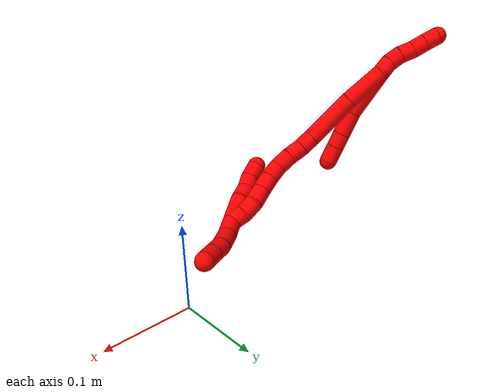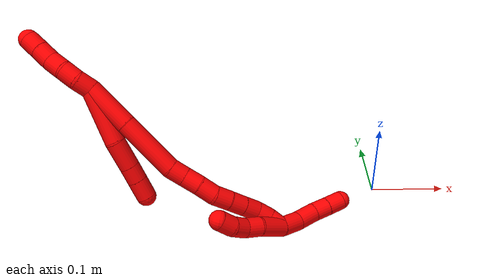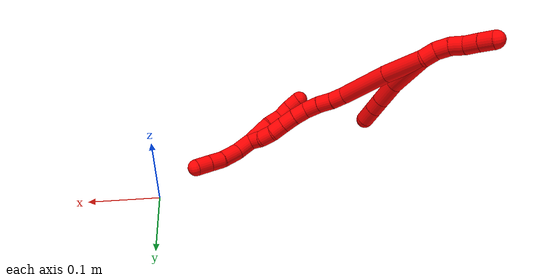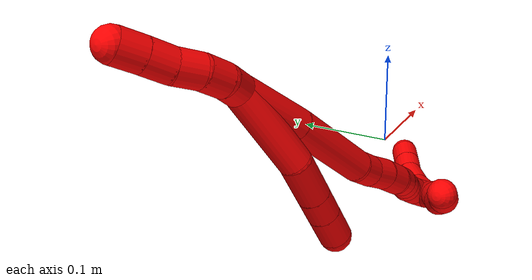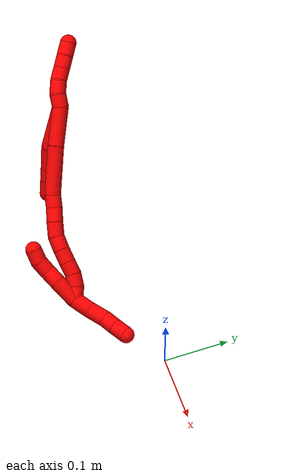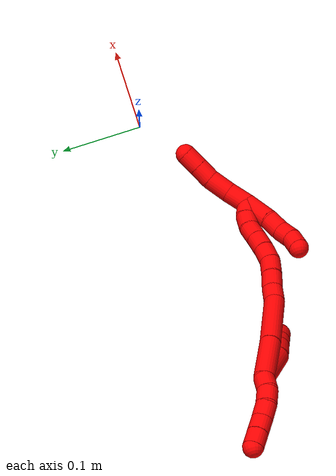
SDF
<sdf version="1.7">
 <world name="default">
  <model name="2">
   <static>0</static>
   <link name="2">
    <collision name="collision-cylinder-e_1_2_8">
     <pose>-0.008445 0.026546 -0.020393 -2.22587 -0.247109 0.493737</pose>
     <geometry><cylinder><radius>0.0125</radius><length>0.069047</length></cylinder></geometry>
     <surface>
      <friction><ode><mu>1.16</mu><mu2>1.16</mu2><slip1>0</slip1><slip2>0</slip2></ode></friction>
      <contact><ode><kp>1e+06</kp><kd>1</kd><max_vel>0</max_vel><min_depth>0.001</min_depth></ode></contact>
     </surface>
    </collision>
    <visual name="visual-cylinder-e_1_2_8">
     <pose>-0.008445 0.026546 -0.020393 -2.22587 -0.247109 0.493737</pose>
     <geometry><cylinder><radius>0.0125</radius><length>0.069047</length></cylinder></geometry>
     <material><ambient>1 0 0 1</ambient></material>
    </visual>
    <collision name="collision-cylinder-e_2_8_9">
     <pose>-0.017422 0.066833 -0.051771 -2.24513 -0.030289 0.062972</pose>
     <geometry><cylinder><radius>0.0125</radius><length>0.0352</length></cylinder></geometry>
     <surface>
      <friction><ode><mu>1.16</mu><mu2>1.16</mu2><slip1>0</slip1><slip2>0</slip2></ode></friction>
      <contact><ode><kp>1e+06</kp><kd>1</kd><max_vel>0</max_vel><min_depth>0.001</min_depth></ode></contact>
     </surface>
    </collision>
    <visual name="visual-cylinder-e_2_8_9">
     <pose>-0.017422 0.066833 -0.051771 -2.24513 -0.030289 0.062972</pose>
     <geometry><cylinder><radius>0.0125</radius><length>0.0352</length></cylinder></geometry>
     <material><ambient>1 0 0 1</ambient></material>
    </visual>
    <collision name="collision-cylinder-e_3_9_10">
     <pose>-0.018325 0.088684 -0.069087 -2.23376 -0.035925 0.073607</pose>
     <geometry><cylinder><radius>0.0125</radius><length>0.020592</length></cylinder></geometry>
     <surface>
      <friction><ode><mu>1.16</mu><mu2>1.16</mu2><slip1>0</slip1><slip2>0</slip2></ode></friction>
      <contact><ode><kp>1e+06</kp><kd>1</kd><max_vel>0</max_vel><min_depth>0.001</min_depth></ode></contact>
     </surface>
    </collision>
    <visual name="visual-cylinder-e_3_9_10">
     <pose>-0.018325 0.088684 -0.069087 -2.23376 -0.035925 0.073607</pose>
     <geometry><cylinder><radius>0.0125</radius><length>0.020592</length></cylinder></geometry>
     <material><ambient>1 0 0 1</ambient></material>
    </visual>
    <collision name="collision-cylinder-e_4_10_6">
     <pose>-0.019204 0.10672 -0.083132 -2.23129 -0.040501 0.082717</pose>
     <geometry><cylinder><radius>0.0125</radius><length>0.025161</length></cylinder></geometry>
     <surface>
      <friction><ode><mu>1.16</mu><mu2>1.16</mu2><slip1>0</slip1><slip2>0</slip2></ode></friction>
      <contact><ode><kp>1e+06</kp><kd>1</kd><max_vel>0</max_vel><min_depth>0.001</min_depth></ode></contact>
     </surface>
    </collision>
    <visual name="visual-cylinder-e_4_10_6">
     <pose>-0.019204 0.10672 -0.083132 -2.23129 -0.040501 0.082717</pose>
     <geometry><cylinder><radius>0.0125</radius><length>0.025161</length></cylinder></geometry>
     <material><ambient>1 0 0 1</ambient></material>
    </visual>
    <collision name="collision-cylinder-e_1_2_11">
     <pose>-0.000749 -0.004033 0.00912 0.416411 -0.074977 -0.015847</pose>
     <geometry><cylinder><radius>0.0125</radius><length>0.02</length></cylinder></geometry>
     <surface>
      <friction><ode><mu>1.16</mu><mu2>1.16</mu2><slip1>0</slip1><slip2>0</slip2></ode></friction>
      <contact><ode><kp>1e+06</kp><kd>1</kd><max_vel>0</max_vel><min_depth>0.001</min_depth></ode></contact>
     </surface>
    </collision>
    <visual name="visual-cylinder-e_1_2_11">
     <pose>-0.000749 -0.004033 0.00912 0.416411 -0.074977 -0.015847</pose>
     <geometry><cylinder><radius>0.0125</radius><length>0.02</length></cylinder></geometry>
     <material><ambient>1 0 0 1</ambient></material>
    </visual>
    <collision name="collision-cylinder-e_2_11_12">
     <pose>0.00068 -0.011521 0.027368 0.361761 0.219559 0.040309</pose>
     <geometry><cylinder><radius>0.0125</radius><length>0.02</length></cylinder></geometry>
     <surface>
      <friction><ode><mu>1.16</mu><mu2>1.16</mu2><slip1>0</slip1><slip2>0</slip2></ode></friction>
      <contact><ode><kp>1e+06</kp><kd>1</kd><max_vel>0</max_vel><min_depth>0.001</min_depth></ode></contact>
     </surface>
    </collision>
    <visual name="visual-cylinder-e_2_11_12">
     <pose>0.00068 -0.011521 0.027368 0.361761 0.219559 0.040309</pose>
     <geometry><cylinder><radius>0.0125</radius><length>0.02</length></cylinder></geometry>
     <material><ambient>1 0 0 1</ambient></material>
    </visual>
    <collision name="collision-cylinder-e_3_12_13">
     <pose>0.007082 -0.017145 0.045296 0.241767 0.436142 0.053824</pose>
     <geometry><cylinder><radius>0.0125</radius><length>0.02</length></cylinder></geometry>
     <surface>
      <friction><ode><mu>1.16</mu><mu2>1.16</mu2><slip1>0</slip1><slip2>0</slip2></ode></friction>
      <contact><ode><kp>1e+06</kp><kd>1</kd><max_vel>0</max_vel><min_depth>0.001</min_depth></ode></contact>
     </surface>
    </collision>
    <visual name="visual-cylinder-e_3_12_13">
     <pose>0.007082 -0.017145 0.045296 0.241767 0.436142 0.053824</pose>
     <geometry><cylinder><radius>0.0125</radius><length>0.02</length></cylinder></geometry>
     <material><ambient>1 0 0 1</ambient></material>
    </visual>
    <collision name="collision-cylinder-e_4_13_14">
     <pose>0.015192 -0.02293 0.062572 0.40311 0.399035 0.082587</pose>
     <geometry><cylinder><radius>0.0125</radius><length>0.02</length></cylinder></geometry>
     <surface>
      <friction><ode><mu>1.16</mu><mu2>1.16</mu2><slip1>0</slip1><slip2>0</slip2></ode></friction>
      <contact><ode><kp>1e+06</kp><kd>1</kd><max_vel>0</max_vel><min_depth>0.001</min_depth></ode></contact>
     </surface>
    </collision>
    <visual name="visual-cylinder-e_4_13_14">
     <pose>0.015192 -0.02293 0.062572 0.40311 0.399035 0.082587</pose>
     <geometry><cylinder><radius>0.0125</radius><length>0.02</length></cylinder></geometry>
     <material><ambient>1 0 0 1</ambient></material>
    </visual>
    <collision name="collision-cylinder-e_5_14_5">
     <pose>0.023083 -0.029874 0.079585 0.371846 0.41212 0.078594</pose>
     <geometry><cylinder><radius>0.0125</radius><length>0.02</length></cylinder></geometry>
     <surface>
      <friction><ode><mu>1.16</mu><mu2>1.16</mu2><slip1>0</slip1><slip2>0</slip2></ode></friction>
      <contact><ode><kp>1e+06</kp><kd>1</kd><max_vel>0</max_vel><min_depth>0.001</min_depth></ode></contact>
     </surface>
    </collision>
    <visual name="visual-cylinder-e_5_14_5">
     <pose>0.023083 -0.029874 0.079585 0.371846 0.41212 0.078594</pose>
     <geometry><cylinder><radius>0.0125</radius><length>0.02</length></cylinder></geometry>
     <material><ambient>1 0 0 1</ambient></material>
    </visual>
    <collision name="collision-cylinder-e_1_2_15">
     <pose>-0.006977 0.013908 -0.025037 -2.63455 -0.238956 0.86778</pose>
     <geometry><cylinder><radius>0.0125</radius><length>0.058957</length></cylinder></geometry>
     <surface>
      <friction><ode><mu>1.16</mu><mu2>1.16</mu2><slip1>0</slip1><slip2>0</slip2></ode></friction>
      <contact><ode><kp>1e+06</kp><kd>1</kd><max_vel>0</max_vel><min_depth>0.001</min_depth></ode></contact>
     </surface>
    </collision>
    <visual name="visual-cylinder-e_1_2_15">
     <pose>-0.006977 0.013908 -0.025037 -2.63455 -0.238956 0.86778</pose>
     <geometry><cylinder><radius>0.0125</radius><length>0.058957</length></cylinder></geometry>
     <material><ambient>1 0 0 1</ambient></material>
    </visual>
    <collision name="collision-cylinder-e_2_15_16">
     <pose>-0.020414 0.046951 -0.081747 -2.59813 -0.172817 0.602851</pose>
     <geometry><cylinder><radius>0.0125</radius><length>0.075126</length></cylinder></geometry>
     <surface>
      <friction><ode><mu>1.16</mu><mu2>1.16</mu2><slip1>0</slip1><slip2>0</slip2></ode></friction>
      <contact><ode><kp>1e+06</kp><kd>1</kd><max_vel>0</max_vel><min_depth>0.001</min_depth></ode></contact>
     </surface>
    </collision>
    <visual name="visual-cylinder-e_2_15_16">
     <pose>-0.020414 0.046951 -0.081747 -2.59813 -0.172817 0.602851</pose>
     <geometry><cylinder><radius>0.0125</radius><length>0.075126</length></cylinder></geometry>
     <material><ambient>1 0 0 1</ambient></material>
    </visual>
    <collision name="collision-cylinder-e_3_16_17">
     <pose>-0.027177 0.069457 -0.122867 -2.79886 -0.030305 0.174679</pose>
     <geometry><cylinder><radius>0.0125</radius><length>0.020073</length></cylinder></geometry>
     <surface>
      <friction><ode><mu>1.16</mu><mu2>1.16</mu2><slip1>0</slip1><slip2>0</slip2></ode></friction>
      <contact><ode><kp>1e+06</kp><kd>1</kd><max_vel>0</max_vel><min_depth>0.001</min_depth></ode></contact>
     </surface>
    </collision>
    <visual name="visual-cylinder-e_3_16_17">
     <pose>-0.027177 0.069457 -0.122867 -2.79886 -0.030305 0.174679</pose>
     <geometry><cylinder><radius>0.0125</radius><length>0.020073</length></cylinder></geometry>
     <material><ambient>1 0 0 1</ambient></material>
    </visual>
    <collision name="collision-cylinder-e_4_17_18">
     <pose>-0.028915 0.075698 -0.142444 -2.8655 -0.135403 0.908072</pose>
     <geometry><cylinder><radius>0.0125</radius><length>0.02125</length></cylinder></geometry>
     <surface>
      <friction><ode><mu>1.16</mu><mu2>1.16</mu2><slip1>0</slip1><slip2>0</slip2></ode></friction>
      <contact><ode><kp>1e+06</kp><kd>1</kd><max_vel>0</max_vel><min_depth>0.001</min_depth></ode></contact>
     </surface>
    </collision>
    <visual name="visual-cylinder-e_4_17_18">
     <pose>-0.028915 0.075698 -0.142444 -2.8655 -0.135403 0.908072</pose>
     <geometry><cylinder><radius>0.0125</radius><length>0.02125</length></cylinder></geometry>
     <material><ambient>1 0 0 1</ambient></material>
    </visual>
    <collision name="collision-cylinder-e_5_18_19">
     <pose>-0.031051 0.082524 -0.162939 -2.77698 -0.063101 0.339103</pose>
     <geometry><cylinder><radius>0.0125</radius><length>0.022234</length></cylinder></geometry>
     <surface>
      <friction><ode><mu>1.16</mu><mu2>1.16</mu2><slip1>0</slip1><slip2>0</slip2></ode></friction>
      <contact><ode><kp>1e+06</kp><kd>1</kd><max_vel>0</max_vel><min_depth>0.001</min_depth></ode></contact>
     </surface>
    </collision>
    <visual name="visual-cylinder-e_5_18_19">
     <pose>-0.031051 0.082524 -0.162939 -2.77698 -0.063101 0.339103</pose>
     <geometry><cylinder><radius>0.0125</radius><length>0.022234</length></cylinder></geometry>
     <material><ambient>1 0 0 1</ambient></material>
    </visual>
    <collision name="collision-cylinder-e_6_19_20">
     <pose>-0.029514 0.089221 -0.183145 -2.86995 0.215633 -1.33968</pose>
     <geometry><cylinder><radius>0.0125</radius><length>0.020914</length></cylinder></geometry>
     <surface>
      <friction><ode><mu>1.16</mu><mu2>1.16</mu2><slip1>0</slip1><slip2>0</slip2></ode></friction>
      <contact><ode><kp>1e+06</kp><kd>1</kd><max_vel>0</max_vel><min_depth>0.001</min_depth></ode></contact>
     </surface>
    </collision>
    <visual name="visual-cylinder-e_6_19_20">
     <pose>-0.029514 0.089221 -0.183145 -2.86995 0.215633 -1.33968</pose>
     <geometry><cylinder><radius>0.0125</radius><length>0.020914</length></cylinder></geometry>
     <material><ambient>1 0 0 1</ambient></material>
    </visual>
    <collision name="collision-cylinder-e_7_20_21">
     <pose>-0.024388 0.095142 -0.202438 -2.81708 0.281983 -1.42862</pose>
     <geometry><cylinder><radius>0.0125</radius><length>0.020767</length></cylinder></geometry>
     <surface>
      <friction><ode><mu>1.16</mu><mu2>1.16</mu2><slip1>0</slip1><slip2>0</slip2></ode></friction>
      <contact><ode><kp>1e+06</kp><kd>1</kd><max_vel>0</max_vel><min_depth>0.001</min_depth></ode></contact>
     </surface>
    </collision>
    <visual name="visual-cylinder-e_7_20_21">
     <pose>-0.024388 0.095142 -0.202438 -2.81708 0.281983 -1.42862</pose>
     <geometry><cylinder><radius>0.0125</radius><length>0.020767</length></cylinder></geometry>
     <material><ambient>1 0 0 1</ambient></material>
    </visual>
    <collision name="collision-cylinder-e_8_21_22">
     <pose>-0.018333 0.101546 -0.221161 -2.80693 0.31193 -1.49927</pose>
     <geometry><cylinder><radius>0.0125</radius><length>0.020625</length></cylinder></geometry>
     <surface>
      <friction><ode><mu>1.16</mu><mu2>1.16</mu2><slip1>0</slip1><slip2>0</slip2></ode></friction>
      <contact><ode><kp>1e+06</kp><kd>1</kd><max_vel>0</max_vel><min_depth>0.001</min_depth></ode></contact>
     </surface>
    </collision>
    <visual name="visual-cylinder-e_8_21_22">
     <pose>-0.018333 0.101546 -0.221161 -2.80693 0.31193 -1.49927</pose>
     <geometry><cylinder><radius>0.0125</radius><length>0.020625</length></cylinder></geometry>
     <material><ambient>1 0 0 1</ambient></material>
    </visual>
    <collision name="collision-cylinder-e_9_22_23">
     <pose>-0.014491 0.108105 -0.239835 -2.8007 0.067792 -0.389037</pose>
     <geometry><cylinder><radius>0.0125</radius><length>0.02</length></cylinder></geometry>
     <surface>
      <friction><ode><mu>1.16</mu><mu2>1.16</mu2><slip1>0</slip1><slip2>0</slip2></ode></friction>
      <contact><ode><kp>1e+06</kp><kd>1</kd><max_vel>0</max_vel><min_depth>0.001</min_depth></ode></contact>
     </surface>
    </collision>
    <visual name="visual-cylinder-e_9_22_23">
     <pose>-0.014491 0.108105 -0.239835 -2.8007 0.067792 -0.389037</pose>
     <geometry><cylinder><radius>0.0125</radius><length>0.02</length></cylinder></geometry>
     <material><ambient>1 0 0 1</ambient></material>
    </visual>
    <collision name="collision-cylinder-e_10_23_1">
     <pose>-0.016298 0.114791 -0.258356 -2.78948 -0.250351 1.23127</pose>
     <geometry><cylinder><radius>0.0125</radius><length>0.020054</length></cylinder></geometry>
     <surface>
      <friction><ode><mu>1.16</mu><mu2>1.16</mu2><slip1>0</slip1><slip2>0</slip2></ode></friction>
      <contact><ode><kp>1e+06</kp><kd>1</kd><max_vel>0</max_vel><min_depth>0.001</min_depth></ode></contact>
     </surface>
    </collision>
    <visual name="visual-cylinder-e_10_23_1">
     <pose>-0.016298 0.114791 -0.258356 -2.78948 -0.250351 1.23127</pose>
     <geometry><cylinder><radius>0.0125</radius><length>0.020054</length></cylinder></geometry>
     <material><ambient>1 0 0 1</ambient></material>
    </visual>
    <collision name="collision-cylinder-e_1_1_24">
     <pose>-0.029576 0.114656 -0.252256 0.225139 -0.604916 -0.070519</pose>
     <geometry><cylinder><radius>0.0125</radius><length>0.03796</length></cylinder></geometry>
     <surface>
      <friction><ode><mu>1.16</mu><mu2>1.16</mu2><slip1>0</slip1><slip2>0</slip2></ode></friction>
      <contact><ode><kp>1e+06</kp><kd>1</kd><max_vel>0</max_vel><min_depth>0.001</min_depth></ode></contact>
     </surface>
    </collision>
    <visual name="visual-cylinder-e_1_1_24">
     <pose>-0.029576 0.114656 -0.252256 0.225139 -0.604916 -0.070519</pose>
     <geometry><cylinder><radius>0.0125</radius><length>0.03796</length></cylinder></geometry>
     <material><ambient>1 0 0 1</ambient></material>
    </visual>
    <collision name="collision-cylinder-e_2_24_25">
     <pose>-0.045787 0.111232 -0.227672 -0.006516 -0.524398 0.001749</pose>
     <geometry><cylinder><radius>0.0125</radius><length>0.02164</length></cylinder></geometry>
     <surface>
      <friction><ode><mu>1.16</mu><mu2>1.16</mu2><slip1>0</slip1><slip2>0</slip2></ode></friction>
      <contact><ode><kp>1e+06</kp><kd>1</kd><max_vel>0</max_vel><min_depth>0.001</min_depth></ode></contact>
     </surface>
    </collision>
    <visual name="visual-cylinder-e_2_24_25">
     <pose>-0.045787 0.111232 -0.227672 -0.006516 -0.524398 0.001749</pose>
     <geometry><cylinder><radius>0.0125</radius><length>0.02164</length></cylinder></geometry>
     <material><ambient>1 0 0 1</ambient></material>
    </visual>
    <collision name="collision-cylinder-e_3_25_26">
     <pose>-0.05678 0.108515 -0.210366 0.336565 -0.585306 -0.102287</pose>
     <geometry><cylinder><radius>0.0125</radius><length>0.020185</length></cylinder></geometry>
     <surface>
      <friction><ode><mu>1.16</mu><mu2>1.16</mu2><slip1>0</slip1><slip2>0</slip2></ode></friction>
      <contact><ode><kp>1e+06</kp><kd>1</kd><max_vel>0</max_vel><min_depth>0.001</min_depth></ode></contact>
     </surface>
    </collision>
    <visual name="visual-cylinder-e_3_25_26">
     <pose>-0.05678 0.108515 -0.210366 0.336565 -0.585306 -0.102287</pose>
     <geometry><cylinder><radius>0.0125</radius><length>0.020185</length></cylinder></geometry>
     <material><ambient>1 0 0 1</ambient></material>
    </visual>
    <collision name="collision-cylinder-e_4_26_4">
     <pose>-0.06525 0.10172 -0.193613 0.427624 -0.290428 -0.063487</pose>
     <geometry><cylinder><radius>0.0125</radius><length>0.020215</length></cylinder></geometry>
     <surface>
      <friction><ode><mu>1.16</mu><mu2>1.16</mu2><slip1>0</slip1><slip2>0</slip2></ode></friction>
      <contact><ode><kp>1e+06</kp><kd>1</kd><max_vel>0</max_vel><min_depth>0.001</min_depth></ode></contact>
     </surface>
    </collision>
    <visual name="visual-cylinder-e_4_26_4">
     <pose>-0.06525 0.10172 -0.193613 0.427624 -0.290428 -0.063487</pose>
     <geometry><cylinder><radius>0.0125</radius><length>0.020215</length></cylinder></geometry>
     <material><ambient>1 0 0 1</ambient></material>
    </visual>
    <collision name="collision-cylinder-e_1_1_27">
     <pose>-0.009431 0.116831 -0.277995 3.01771 0.722787 2.81634</pose>
     <geometry><cylinder><radius>0.0125</radius><length>0.028273</length></cylinder></geometry>
     <surface>
      <friction><ode><mu>1.16</mu><mu2>1.16</mu2><slip1>0</slip1><slip2>0</slip2></ode></friction>
      <contact><ode><kp>1e+06</kp><kd>1</kd><max_vel>0</max_vel><min_depth>0.001</min_depth></ode></contact>
     </surface>
    </collision>
    <visual name="visual-cylinder-e_1_1_27">
     <pose>-0.009431 0.116831 -0.277995 3.01771 0.722787 2.81634</pose>
     <geometry><cylinder><radius>0.0125</radius><length>0.028273</length></cylinder></geometry>
     <material><ambient>1 0 0 1</ambient></material>
    </visual>
    <collision name="collision-cylinder-e_2_27_28">
     <pose>0.008801 0.111461 -0.298793 2.76533 0.676999 2.15011</pose>
     <geometry><cylinder><radius>0.0125</radius><length>0.028354</length></cylinder></geometry>
     <surface>
      <friction><ode><mu>1.16</mu><mu2>1.16</mu2><slip1>0</slip1><slip2>0</slip2></ode></friction>
      <contact><ode><kp>1e+06</kp><kd>1</kd><max_vel>0</max_vel><min_depth>0.001</min_depth></ode></contact>
     </surface>
    </collision>
    <visual name="visual-cylinder-e_2_27_28">
     <pose>0.008801 0.111461 -0.298793 2.76533 0.676999 2.15011</pose>
     <geometry><cylinder><radius>0.0125</radius><length>0.028354</length></cylinder></geometry>
     <material><ambient>1 0 0 1</ambient></material>
    </visual>
    <collision name="collision-cylinder-e_3_28_29">
     <pose>0.022662 0.103549 -0.31763 2.71878 0.487733 1.71814</pose>
     <geometry><cylinder><radius>0.0125</radius><length>0.02125</length></cylinder></geometry>
     <surface>
      <friction><ode><mu>1.16</mu><mu2>1.16</mu2><slip1>0</slip1><slip2>0</slip2></ode></friction>
      <contact><ode><kp>1e+06</kp><kd>1</kd><max_vel>0</max_vel><min_depth>0.001</min_depth></ode></contact>
     </surface>
    </collision>
    <visual name="visual-cylinder-e_3_28_29">
     <pose>0.022662 0.103549 -0.31763 2.71878 0.487733 1.71814</pose>
     <geometry><cylinder><radius>0.0125</radius><length>0.02125</length></cylinder></geometry>
     <material><ambient>1 0 0 1</ambient></material>
    </visual>
    <collision name="collision-cylinder-e_4_29_3">
     <pose>0.033047 0.09563 -0.334941 2.70655 0.51061 1.73631</pose>
     <geometry><cylinder><radius>0.0125</radius><length>0.022123</length></cylinder></geometry>
     <surface>
      <friction><ode><mu>1.16</mu><mu2>1.16</mu2><slip1>0</slip1><slip2>0</slip2></ode></friction>
      <contact><ode><kp>1e+06</kp><kd>1</kd><max_vel>0</max_vel><min_depth>0.001</min_depth></ode></contact>
     </surface>
    </collision>
    <visual name="visual-cylinder-e_4_29_3">
     <pose>0.033047 0.09563 -0.334941 2.70655 0.51061 1.73631</pose>
     <geometry><cylinder><radius>0.0125</radius><length>0.022123</length></cylinder></geometry>
     <material><ambient>1 0 0 1</ambient></material>
    </visual>
    <collision name="collision-sphere-3">
     <pose>0.038453 0.091563 -0.343693 0 -0 0</pose>
     <geometry><sphere><radius>0.0125</radius></sphere></geometry>
     <surface>
      <friction><ode><mu>1.16</mu><mu2>1.16</mu2><slip1>0</slip1><slip2>0</slip2></ode></friction>
      <contact><ode><kp>1e+06</kp><kd>1</kd><max_vel>0</max_vel><min_depth>0.001</min_depth></ode></contact>
     </surface>
    </collision>
    <visual name="visual-sphere-3">
     <pose>0.038453 0.091563 -0.343693 0 -0 0</pose>
     <geometry><sphere><radius>0.0125</radius></sphere></geometry>
     <material><ambient>1 0 0 1</ambient></material>
    </visual>
    <collision name="collision-sphere-29">
     <pose>0.027641 0.099698 -0.326189 0 -0 0</pose>
     <geometry><sphere><radius>0.0125</radius></sphere></geometry>
     <surface>
      <friction><ode><mu>1.16</mu><mu2>1.16</mu2><slip1>0</slip1><slip2>0</slip2></ode></friction>
      <contact><ode><kp>1e+06</kp><kd>1</kd><max_vel>0</max_vel><min_depth>0.001</min_depth></ode></contact>
     </surface>
    </collision>
    <visual name="visual-sphere-29">
     <pose>0.027641 0.099698 -0.326189 0 -0 0</pose>
     <geometry><sphere><radius>0.0125</radius></sphere></geometry>
     <material><ambient>1 0 0 1</ambient></material>
    </visual>
    <collision name="collision-sphere-28">
     <pose>0.017683 0.107401 -0.30907 0 -0 0</pose>
     <geometry><sphere><radius>0.0125</radius></sphere></geometry>
     <surface>
      <friction><ode><mu>1.16</mu><mu2>1.16</mu2><slip1>0</slip1><slip2>0</slip2></ode></friction>
      <contact><ode><kp>1e+06</kp><kd>1</kd><max_vel>0</max_vel><min_depth>0.001</min_depth></ode></contact>
     </surface>
    </collision>
    <visual name="visual-sphere-28">
     <pose>0.017683 0.107401 -0.30907 0 -0 0</pose>
     <geometry><sphere><radius>0.0125</radius></sphere></geometry>
     <material><ambient>1 0 0 1</ambient></material>
    </visual>
    <collision name="collision-sphere-27">
     <pose>-8e-05 0.115521 -0.288516 0 -0 0</pose>
     <geometry><sphere><radius>0.0125</radius></sphere></geometry>
     <surface>
      <friction><ode><mu>1.16</mu><mu2>1.16</mu2><slip1>0</slip1><slip2>0</slip2></ode></friction>
      <contact><ode><kp>1e+06</kp><kd>1</kd><max_vel>0</max_vel><min_depth>0.001</min_depth></ode></contact>
     </surface>
    </collision>
    <visual name="visual-sphere-27">
     <pose>-8e-05 0.115521 -0.288516 0 -0 0</pose>
     <geometry><sphere><radius>0.0125</radius></sphere></geometry>
     <material><ambient>1 0 0 1</ambient></material>
    </visual>
    <collision name="collision-sphere-4">
     <pose>-0.068144 0.097704 -0.184801 0 -0 0</pose>
     <geometry><sphere><radius>0.0125</radius></sphere></geometry>
     <surface>
      <friction><ode><mu>1.16</mu><mu2>1.16</mu2><slip1>0</slip1><slip2>0</slip2></ode></friction>
      <contact><ode><kp>1e+06</kp><kd>1</kd><max_vel>0</max_vel><min_depth>0.001</min_depth></ode></contact>
     </surface>
    </collision>
    <visual name="visual-sphere-4">
     <pose>-0.068144 0.097704 -0.184801 0 -0 0</pose>
     <geometry><sphere><radius>0.0125</radius></sphere></geometry>
     <material><ambient>1 0 0 1</ambient></material>
    </visual>
    <collision name="collision-sphere-26">
     <pose>-0.062356 0.105737 -0.202426 0 -0 0</pose>
     <geometry><sphere><radius>0.0125</radius></sphere></geometry>
     <surface>
      <friction><ode><mu>1.16</mu><mu2>1.16</mu2><slip1>0</slip1><slip2>0</slip2></ode></friction>
      <contact><ode><kp>1e+06</kp><kd>1</kd><max_vel>0</max_vel><min_depth>0.001</min_depth></ode></contact>
     </surface>
    </collision>
    <visual name="visual-sphere-26">
     <pose>-0.062356 0.105737 -0.202426 0 -0 0</pose>
     <geometry><sphere><radius>0.0125</radius></sphere></geometry>
     <material><ambient>1 0 0 1</ambient></material>
    </visual>
    <collision name="collision-sphere-25">
     <pose>-0.051205 0.111293 -0.218306 0 -0 0</pose>
     <geometry><sphere><radius>0.0125</radius></sphere></geometry>
     <surface>
      <friction><ode><mu>1.16</mu><mu2>1.16</mu2><slip1>0</slip1><slip2>0</slip2></ode></friction>
      <contact><ode><kp>1e+06</kp><kd>1</kd><max_vel>0</max_vel><min_depth>0.001</min_depth></ode></contact>
     </surface>
    </collision>
    <visual name="visual-sphere-25">
     <pose>-0.051205 0.111293 -0.218306 0 -0 0</pose>
     <geometry><sphere><radius>0.0125</radius></sphere></geometry>
     <material><ambient>1 0 0 1</ambient></material>
    </visual>
    <collision name="collision-sphere-24">
     <pose>-0.04037 0.111171 -0.237038 0 -0 0</pose>
     <geometry><sphere><radius>0.0125</radius></sphere></geometry>
     <surface>
      <friction><ode><mu>1.16</mu><mu2>1.16</mu2><slip1>0</slip1><slip2>0</slip2></ode></friction>
      <contact><ode><kp>1e+06</kp><kd>1</kd><max_vel>0</max_vel><min_depth>0.001</min_depth></ode></contact>
     </surface>
    </collision>
    <visual name="visual-sphere-24">
     <pose>-0.04037 0.111171 -0.237038 0 -0 0</pose>
     <geometry><sphere><radius>0.0125</radius></sphere></geometry>
     <material><ambient>1 0 0 1</ambient></material>
    </visual>
    <collision name="collision-sphere-1">
     <pose>-0.018782 0.118141 -0.267474 0 -0 0</pose>
     <geometry><sphere><radius>0.0125</radius></sphere></geometry>
     <surface>
      <friction><ode><mu>1.16</mu><mu2>1.16</mu2><slip1>0</slip1><slip2>0</slip2></ode></friction>
      <contact><ode><kp>1e+06</kp><kd>1</kd><max_vel>0</max_vel><min_depth>0.001</min_depth></ode></contact>
     </surface>
    </collision>
    <visual name="visual-sphere-1">
     <pose>-0.018782 0.118141 -0.267474 0 -0 0</pose>
     <geometry><sphere><radius>0.0125</radius></sphere></geometry>
     <material><ambient>1 0 0 1</ambient></material>
    </visual>
    <collision name="collision-sphere-23">
     <pose>-0.013814 0.111441 -0.249238 0 -0 0</pose>
     <geometry><sphere><radius>0.0125</radius></sphere></geometry>
     <surface>
      <friction><ode><mu>1.16</mu><mu2>1.16</mu2><slip1>0</slip1><slip2>0</slip2></ode></friction>
      <contact><ode><kp>1e+06</kp><kd>1</kd><max_vel>0</max_vel><min_depth>0.001</min_depth></ode></contact>
     </surface>
    </collision>
    <visual name="visual-sphere-23">
     <pose>-0.013814 0.111441 -0.249238 0 -0 0</pose>
     <geometry><sphere><radius>0.0125</radius></sphere></geometry>
     <material><ambient>1 0 0 1</ambient></material>
    </visual>
    <collision name="collision-sphere-22">
     <pose>-0.015168 0.10477 -0.230432 0 -0 0</pose>
     <geometry><sphere><radius>0.0125</radius></sphere></geometry>
     <surface>
      <friction><ode><mu>1.16</mu><mu2>1.16</mu2><slip1>0</slip1><slip2>0</slip2></ode></friction>
      <contact><ode><kp>1e+06</kp><kd>1</kd><max_vel>0</max_vel><min_depth>0.001</min_depth></ode></contact>
     </surface>
    </collision>
    <visual name="visual-sphere-22">
     <pose>-0.015168 0.10477 -0.230432 0 -0 0</pose>
     <geometry><sphere><radius>0.0125</radius></sphere></geometry>
     <material><ambient>1 0 0 1</ambient></material>
    </visual>
    <collision name="collision-sphere-21">
     <pose>-0.021498 0.098322 -0.211891 0 -0 0</pose>
     <geometry><sphere><radius>0.0125</radius></sphere></geometry>
     <surface>
      <friction><ode><mu>1.16</mu><mu2>1.16</mu2><slip1>0</slip1><slip2>0</slip2></ode></friction>
      <contact><ode><kp>1e+06</kp><kd>1</kd><max_vel>0</max_vel><min_depth>0.001</min_depth></ode></contact>
     </surface>
    </collision>
    <visual name="visual-sphere-21">
     <pose>-0.021498 0.098322 -0.211891 0 -0 0</pose>
     <geometry><sphere><radius>0.0125</radius></sphere></geometry>
     <material><ambient>1 0 0 1</ambient></material>
    </visual>
    <collision name="collision-sphere-11">
     <pose>-0.001498 -0.008067 0.01824 0 -0 0</pose>
     <geometry><sphere><radius>0.0125</radius></sphere></geometry>
     <surface>
      <friction><ode><mu>1.16</mu><mu2>1.16</mu2><slip1>0</slip1><slip2>0</slip2></ode></friction>
      <contact><ode><kp>1e+06</kp><kd>1</kd><max_vel>0</max_vel><min_depth>0.001</min_depth></ode></contact>
     </surface>
    </collision>
    <visual name="visual-sphere-11">
     <pose>-0.001498 -0.008067 0.01824 0 -0 0</pose>
     <geometry><sphere><radius>0.0125</radius></sphere></geometry>
     <material><ambient>1 0 0 1</ambient></material>
    </visual>
    <collision name="collision-sphere-6">
     <pose>-0.019714 0.116647 -0.090844 0 -0 0</pose>
     <geometry><sphere><radius>0.0125</radius></sphere></geometry>
     <surface>
      <friction><ode><mu>1.16</mu><mu2>1.16</mu2><slip1>0</slip1><slip2>0</slip2></ode></friction>
      <contact><ode><kp>1e+06</kp><kd>1</kd><max_vel>0</max_vel><min_depth>0.001</min_depth></ode></contact>
     </surface>
    </collision>
    <visual name="visual-sphere-6">
     <pose>-0.019714 0.116647 -0.090844 0 -0 0</pose>
     <geometry><sphere><radius>0.0125</radius></sphere></geometry>
     <material><ambient>1 0 0 1</ambient></material>
    </visual>
    <collision name="collision-sphere-10">
     <pose>-0.018695 0.096793 -0.07542 0 -0 0</pose>
     <geometry><sphere><radius>0.0125</radius></sphere></geometry>
     <surface>
      <friction><ode><mu>1.16</mu><mu2>1.16</mu2><slip1>0</slip1><slip2>0</slip2></ode></friction>
      <contact><ode><kp>1e+06</kp><kd>1</kd><max_vel>0</max_vel><min_depth>0.001</min_depth></ode></contact>
     </surface>
    </collision>
    <visual name="visual-sphere-10">
     <pose>-0.018695 0.096793 -0.07542 0 -0 0</pose>
     <geometry><sphere><radius>0.0125</radius></sphere></geometry>
     <material><ambient>1 0 0 1</ambient></material>
    </visual>
    <collision name="collision-sphere-9">
     <pose>-0.017955 0.080574 -0.062755 0 -0 0</pose>
     <geometry><sphere><radius>0.0125</radius></sphere></geometry>
     <surface>
      <friction><ode><mu>1.16</mu><mu2>1.16</mu2><slip1>0</slip1><slip2>0</slip2></ode></friction>
      <contact><ode><kp>1e+06</kp><kd>1</kd><max_vel>0</max_vel><min_depth>0.001</min_depth></ode></contact>
     </surface>
    </collision>
    <visual name="visual-sphere-9">
     <pose>-0.017955 0.080574 -0.062755 0 -0 0</pose>
     <geometry><sphere><radius>0.0125</radius></sphere></geometry>
     <material><ambient>1 0 0 1</ambient></material>
    </visual>
    <collision name="collision-sphere-2">
     <geometry><sphere><radius>0.0125</radius></sphere></geometry>
     <surface>
      <friction><ode><mu>1.16</mu><mu2>1.16</mu2><slip1>0</slip1><slip2>0</slip2></ode></friction>
      <contact><ode><kp>1e+06</kp><kd>1</kd><max_vel>0</max_vel><min_depth>0.001</min_depth></ode></contact>
     </surface>
    </collision>
    <visual name="visual-sphere-2">
     <geometry><sphere><radius>0.0125</radius></sphere></geometry>
     <material><ambient>1 0 0 1</ambient></material>
    </visual>
    <collision name="collision-sphere-19">
     <pose>-0.031752 0.08648 -0.173305 0 -0 0</pose>
     <geometry><sphere><radius>0.0125</radius></sphere></geometry>
     <surface>
      <friction><ode><mu>1.16</mu><mu2>1.16</mu2><slip1>0</slip1><slip2>0</slip2></ode></friction>
      <contact><ode><kp>1e+06</kp><kd>1</kd><max_vel>0</max_vel><min_depth>0.001</min_depth></ode></contact>
     </surface>
    </collision>
    <visual name="visual-sphere-19">
     <pose>-0.031752 0.08648 -0.173305 0 -0 0</pose>
     <geometry><sphere><radius>0.0125</radius></sphere></geometry>
     <material><ambient>1 0 0 1</ambient></material>
    </visual>
    <collision name="collision-sphere-8">
     <pose>-0.016889 0.053092 -0.040787 0 -0 0</pose>
     <geometry><sphere><radius>0.0125</radius></sphere></geometry>
     <surface>
      <friction><ode><mu>1.16</mu><mu2>1.16</mu2><slip1>0</slip1><slip2>0</slip2></ode></friction>
      <contact><ode><kp>1e+06</kp><kd>1</kd><max_vel>0</max_vel><min_depth>0.001</min_depth></ode></contact>
     </surface>
    </collision>
    <visual name="visual-sphere-8">
     <pose>-0.016889 0.053092 -0.040787 0 -0 0</pose>
     <geometry><sphere><radius>0.0125</radius></sphere></geometry>
     <material><ambient>1 0 0 1</ambient></material>
    </visual>
    <collision name="collision-sphere-12">
     <pose>0.002858 -0.014975 0.036496 0 -0 0</pose>
     <geometry><sphere><radius>0.0125</radius></sphere></geometry>
     <surface>
      <friction><ode><mu>1.16</mu><mu2>1.16</mu2><slip1>0</slip1><slip2>0</slip2></ode></friction>
      <contact><ode><kp>1e+06</kp><kd>1</kd><max_vel>0</max_vel><min_depth>0.001</min_depth></ode></contact>
     </surface>
    </collision>
    <visual name="visual-sphere-12">
     <pose>0.002858 -0.014975 0.036496 0 -0 0</pose>
     <geometry><sphere><radius>0.0125</radius></sphere></geometry>
     <material><ambient>1 0 0 1</ambient></material>
    </visual>
    <collision name="collision-sphere-13">
     <pose>0.011307 -0.019316 0.054097 0 -0 0</pose>
     <geometry><sphere><radius>0.0125</radius></sphere></geometry>
     <surface>
      <friction><ode><mu>1.16</mu><mu2>1.16</mu2><slip1>0</slip1><slip2>0</slip2></ode></friction>
      <contact><ode><kp>1e+06</kp><kd>1</kd><max_vel>0</max_vel><min_depth>0.001</min_depth></ode></contact>
     </surface>
    </collision>
    <visual name="visual-sphere-13">
     <pose>0.011307 -0.019316 0.054097 0 -0 0</pose>
     <geometry><sphere><radius>0.0125</radius></sphere></geometry>
     <material><ambient>1 0 0 1</ambient></material>
    </visual>
    <collision name="collision-sphere-14">
     <pose>0.019077 -0.026545 0.071048 0 -0 0</pose>
     <geometry><sphere><radius>0.0125</radius></sphere></geometry>
     <surface>
      <friction><ode><mu>1.16</mu><mu2>1.16</mu2><slip1>0</slip1><slip2>0</slip2></ode></friction>
      <contact><ode><kp>1e+06</kp><kd>1</kd><max_vel>0</max_vel><min_depth>0.001</min_depth></ode></contact>
     </surface>
    </collision>
    <visual name="visual-sphere-14">
     <pose>0.019077 -0.026545 0.071048 0 -0 0</pose>
     <geometry><sphere><radius>0.0125</radius></sphere></geometry>
     <material><ambient>1 0 0 1</ambient></material>
    </visual>
    <collision name="collision-sphere-5">
     <pose>0.027088 -0.033203 0.088121 0 -0 0</pose>
     <geometry><sphere><radius>0.0125</radius></sphere></geometry>
     <surface>
      <friction><ode><mu>1.16</mu><mu2>1.16</mu2><slip1>0</slip1><slip2>0</slip2></ode></friction>
      <contact><ode><kp>1e+06</kp><kd>1</kd><max_vel>0</max_vel><min_depth>0.001</min_depth></ode></contact>
     </surface>
    </collision>
    <visual name="visual-sphere-5">
     <pose>0.027088 -0.033203 0.088121 0 -0 0</pose>
     <geometry><sphere><radius>0.0125</radius></sphere></geometry>
     <material><ambient>1 0 0 1</ambient></material>
    </visual>
    <collision name="collision-sphere-15">
     <pose>-0.013954 0.027816 -0.050075 0 -0 0</pose>
     <geometry><sphere><radius>0.0125</radius></sphere></geometry>
     <surface>
      <friction><ode><mu>1.16</mu><mu2>1.16</mu2><slip1>0</slip1><slip2>0</slip2></ode></friction>
      <contact><ode><kp>1e+06</kp><kd>1</kd><max_vel>0</max_vel><min_depth>0.001</min_depth></ode></contact>
     </surface>
    </collision>
    <visual name="visual-sphere-15">
     <pose>-0.013954 0.027816 -0.050075 0 -0 0</pose>
     <geometry><sphere><radius>0.0125</radius></sphere></geometry>
     <material><ambient>1 0 0 1</ambient></material>
    </visual>
    <collision name="collision-sphere-16">
     <pose>-0.026873 0.066085 -0.113419 0 -0 0</pose>
     <geometry><sphere><radius>0.0125</radius></sphere></geometry>
     <surface>
      <friction><ode><mu>1.16</mu><mu2>1.16</mu2><slip1>0</slip1><slip2>0</slip2></ode></friction>
      <contact><ode><kp>1e+06</kp><kd>1</kd><max_vel>0</max_vel><min_depth>0.001</min_depth></ode></contact>
     </surface>
    </collision>
    <visual name="visual-sphere-16">
     <pose>-0.026873 0.066085 -0.113419 0 -0 0</pose>
     <geometry><sphere><radius>0.0125</radius></sphere></geometry>
     <material><ambient>1 0 0 1</ambient></material>
    </visual>
    <collision name="collision-sphere-17">
     <pose>-0.027481 0.072828 -0.132315 0 -0 0</pose>
     <geometry><sphere><radius>0.0125</radius></sphere></geometry>
     <surface>
      <friction><ode><mu>1.16</mu><mu2>1.16</mu2><slip1>0</slip1><slip2>0</slip2></ode></friction>
      <contact><ode><kp>1e+06</kp><kd>1</kd><max_vel>0</max_vel><min_depth>0.001</min_depth></ode></contact>
     </surface>
    </collision>
    <visual name="visual-sphere-17">
     <pose>-0.027481 0.072828 -0.132315 0 -0 0</pose>
     <geometry><sphere><radius>0.0125</radius></sphere></geometry>
     <material><ambient>1 0 0 1</ambient></material>
    </visual>
    <collision name="collision-sphere-18">
     <pose>-0.03035 0.078568 -0.152573 0 -0 0</pose>
     <geometry><sphere><radius>0.0125</radius></sphere></geometry>
     <surface>
      <friction><ode><mu>1.16</mu><mu2>1.16</mu2><slip1>0</slip1><slip2>0</slip2></ode></friction>
      <contact><ode><kp>1e+06</kp><kd>1</kd><max_vel>0</max_vel><min_depth>0.001</min_depth></ode></contact>
     </surface>
    </collision>
    <visual name="visual-sphere-18">
     <pose>-0.03035 0.078568 -0.152573 0 -0 0</pose>
     <geometry><sphere><radius>0.0125</radius></sphere></geometry>
     <material><ambient>1 0 0 1</ambient></material>
    </visual>
    <collision name="collision-sphere-20">
     <pose>-0.027277 0.091962 -0.192986 0 -0 0</pose>
     <geometry><sphere><radius>0.0125</radius></sphere></geometry>
     <surface>
      <friction><ode><mu>1.16</mu><mu2>1.16</mu2><slip1>0</slip1><slip2>0</slip2></ode></friction>
      <contact><ode><kp>1e+06</kp><kd>1</kd><max_vel>0</max_vel><min_depth>0.001</min_depth></ode></contact>
     </surface>
    </collision>
    <visual name="visual-sphere-20">
     <pose>-0.027277 0.091962 -0.192986 0 -0 0</pose>
     <geometry><sphere><radius>0.0125</radius></sphere></geometry>
     <material><ambient>1 0 0 1</ambient></material>
    </visual>
    <inertial>
     <pose>-0.013931 0.064477 -0.126302 0 -0 0</pose>
     <mass>0.75</mass>
     <inertia><ixx>0.00015</ixx><ixy>0</ixy><ixz>0</ixz><iyy>3.1e-05</iyy><iyz>0</iyz><izz>-6e-05</izz></inertia>
    </inertial>
   </link>
   <pose>-0.366123 -0.037174 0.189846 -1.33481 0.15815 1.51672</pose>
  </model>
 </world>
</sdf>
